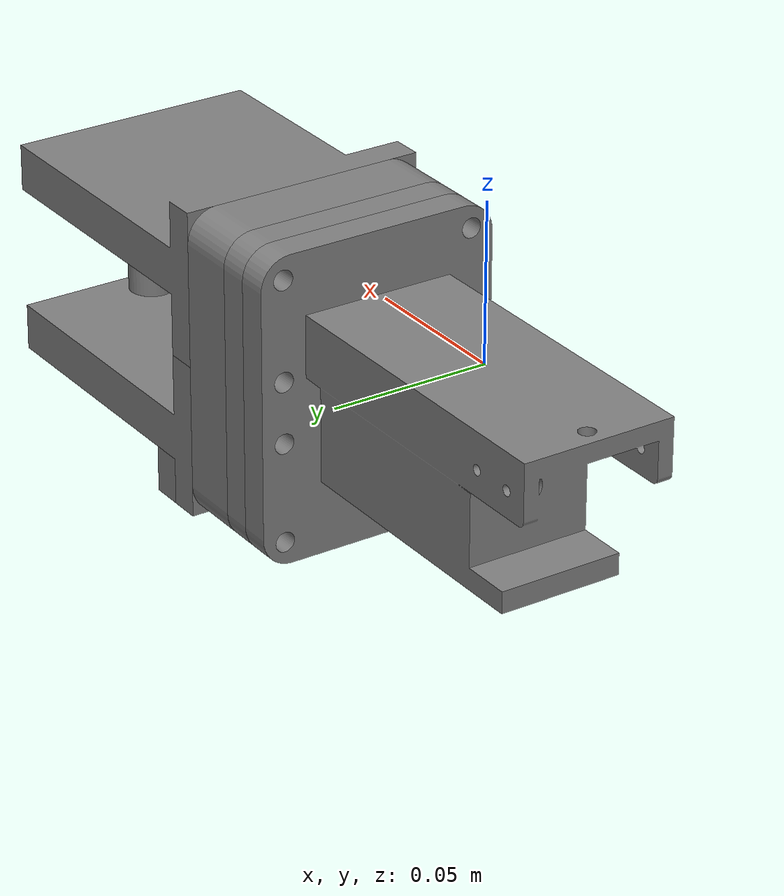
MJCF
<?xml version="1.0" encoding="UTF-8"?>
<mujoco>
<compiler meshdir="assets"/>
  <asset>
    <mesh file="t4__wu_fu_zhu_tui_ban_____bian_shi_tui_hua_kuai__t4__wu_fu_zhu_tui_ban__1_0814_bu_ding_jian__1.stl"/>
    <mesh file="t4__wu_fu_zhu_tui_ban_____bian_shi_tui_hua_kuai__t4__wu_fu_zhu_tui_ban__1__quan_xiang_lun_gu_ding_jian___da_yin___1.stl"/>
    <mesh file="t4__wu_fu_zhu_tui_ban_____bian_shi_tui_hua_kuai__t4__wu_fu_zhu_tui_ban__1__quan_xiang_lun_gu_ding_jian___da_yin____ao__1.stl"/>
    <mesh file="t4__wu_fu_zhu_tui_ban_____bian_shi_tui_hua_kuai__t4__wu_fu_zhu_tui_ban__1__fu_jian___fu_jian___zhuang_pei_ti_1__bian_shi_tui_hua_kuai__t4__wu_fu_zhu_tui_ban__1_10mm_bu_ding_jian__1.stl"/>
    <mesh file="t4__wu_fu_zhu_tui_ban_____bian_shi_tui_hua_kuai__t4__wu_fu_zhu_tui_ban__1__zhi_xian_chuan_gan_qi_gua_gou_gu_ding_jian__1.stl"/>
    <mesh file="t4__wu_fu_zhu_tui_ban_____bian_shi_tui_hua_kuai__t4__wu_fu_zhu_tui_ban__1__zhi_xian_mo_zu_di_bu_lian_jie_jian__0801_1.stl"/>
  </asset>

  <default>
  <default class="辨识腿滑块_default">
  <geom contype="0" conaffinity="0"/>
  </default>
  </default>

  <worldbody>
  <body name="辨识腿滑块_body" pos="0 0 0">
    <geom type="mesh" mesh="t4__wu_fu_zhu_tui_ban_____bian_shi_tui_hua_kuai__t4__wu_fu_zhu_tui_ban__1_0814_bu_ding_jian__1" mass="0.0001" class="辨识腿滑块_default"/>
    <geom type="mesh" mesh="t4__wu_fu_zhu_tui_ban_____bian_shi_tui_hua_kuai__t4__wu_fu_zhu_tui_ban__1__quan_xiang_lun_gu_ding_jian___da_yin___1" mass="0.0001" class="辨识腿滑块_default"/>
    <geom type="mesh" mesh="t4__wu_fu_zhu_tui_ban_____bian_shi_tui_hua_kuai__t4__wu_fu_zhu_tui_ban__1__quan_xiang_lun_gu_ding_jian___da_yin____ao__1" mass="0.0001" class="辨识腿滑块_default"/>
    <geom type="mesh" mesh="t4__wu_fu_zhu_tui_ban_____bian_shi_tui_hua_kuai__t4__wu_fu_zhu_tui_ban__1__fu_jian___fu_jian___zhuang_pei_ti_1__bian_shi_tui_hua_kuai__t4__wu_fu_zhu_tui_ban__1_10mm_bu_ding_jian__1" mass="0.0001" class="辨识腿滑块_default"/>
    <geom type="mesh" mesh="t4__wu_fu_zhu_tui_ban_____bian_shi_tui_hua_kuai__t4__wu_fu_zhu_tui_ban__1__zhi_xian_chuan_gan_qi_gua_gou_gu_ding_jian__1" mass="0.0001" class="辨识腿滑块_default"/>
    <geom type="mesh" mesh="t4__wu_fu_zhu_tui_ban_____bian_shi_tui_hua_kuai__t4__wu_fu_zhu_tui_ban__1__zhi_xian_mo_zu_di_bu_lian_jie_jian__0801_1" mass="0.0001" class="辨识腿滑块_default"/>
  </body>
  </worldbody>
</mujoco>
